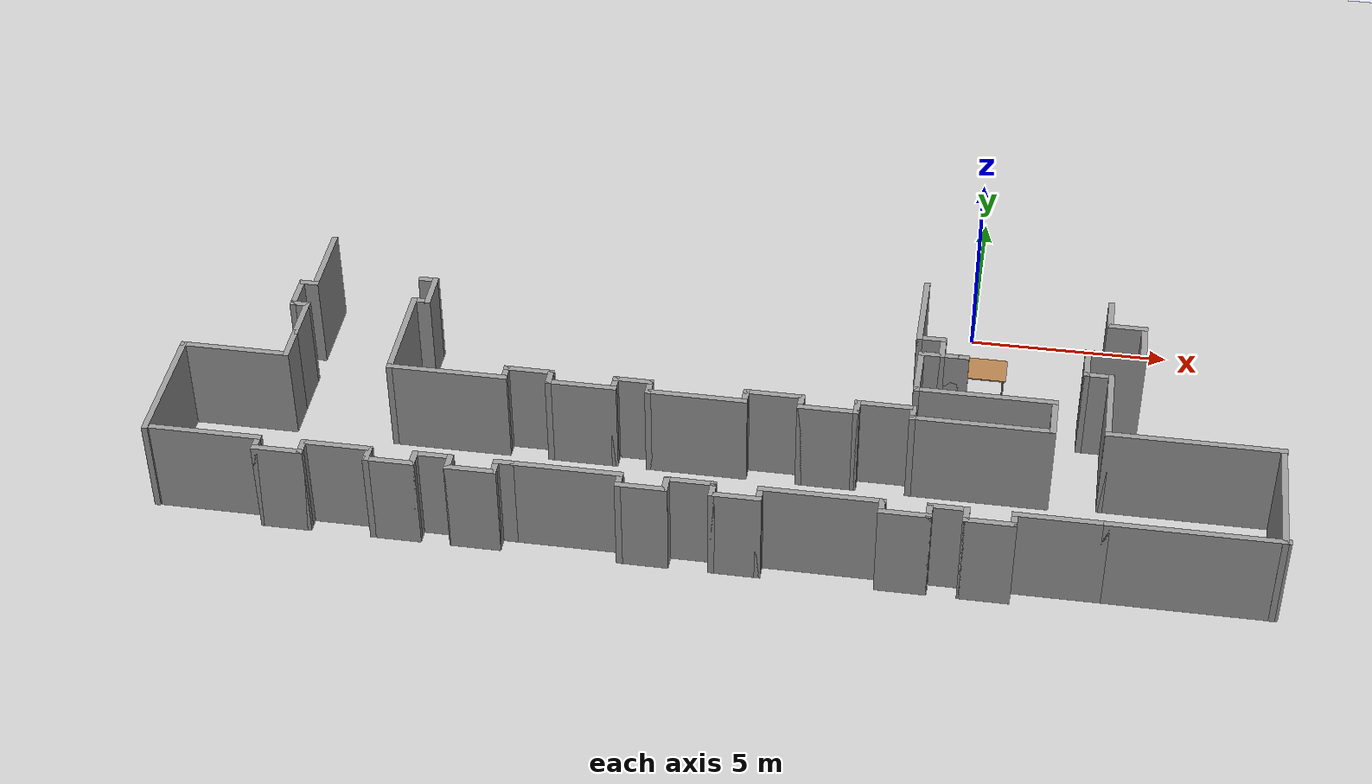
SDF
<sdf version="1.6">
 <world name="default">
  <model name="ground_plane">
   <static>1</static>
   <link name="link">
    <collision name="collision">
     <geometry><plane><normal>0 0 1</normal><size>1 1</size></plane></geometry>
     <surface><friction><ode><mu>100</mu><mu2>50</mu2></ode></friction></surface>
    </collision>
    <visual name="visual">
     <cast_shadows>0</cast_shadows>
     <geometry><plane><normal>0 0 1</normal><size>1 1</size></plane></geometry>
     <material>
      <script><uri>file://media/materials/scripts/gazebo.material</uri><name>Gazebo/Grey</name></script>
     </material>
    </visual>
   </link>
  </model>
  <model name="HRI_1">
   <pose>-5.72111 9.59502 0 0 -0 0</pose>
   <link name="Wall_10">
    <collision name="Wall_10_Collision">
     <geometry><box><size>1.5 0.15 2.5</size></box></geometry>
     <pose>0 0 1.25 0 -0 0</pose>
    </collision>
    <visual name="Wall_10_Visual">
     <pose>0 0 1.25 0 -0 0</pose>
     <geometry><box><size>1.5 0.15 2.5</size></box></geometry>
     <material>
      <script><uri>file://media/materials/scripts/gazebo.material</uri><name>Gazebo/Grey</name></script>
      <ambient>1 1 1 1</ambient>
     </material>
     <meta><layer>0</layer></meta>
    </visual>
    <pose>4.59204 -13.9049 0 0 -0 -1.5708</pose>
   </link>
   <link name="Wall_100">
    <collision name="Wall_100_Collision">
     <geometry><box><size>2 0.15 2.5</size></box></geometry>
     <pose>0 0 1.25 0 -0 0</pose>
    </collision>
    <visual name="Wall_100_Visual">
     <pose>0 0 1.25 0 -0 0</pose>
     <geometry><box><size>2 0.15 2.5</size></box></geometry>
     <material>
      <script><uri>file://media/materials/scripts/gazebo.material</uri><name>Gazebo/Grey</name></script>
      <ambient>1 1 1 1</ambient>
     </material>
     <meta><layer>0</layer></meta>
    </visual>
    <pose>-10.8271 -11.8378 0 0 -0 1.5708</pose>
   </link>
   <link name="Wall_11">
    <collision name="Wall_11_Collision">
     <geometry><box><size>3.5 0.15 2.5</size></box></geometry>
     <pose>0 0 1.25 0 -0 0</pose>
    </collision>
    <visual name="Wall_11_Visual">
     <pose>0 0 1.25 0 -0 0</pose>
     <geometry><box><size>3.5 0.15 2.5</size></box></geometry>
     <material>
      <script><uri>file://media/materials/scripts/gazebo.material</uri><name>Gazebo/Grey</name></script>
      <ambient>1 1 1 1</ambient>
     </material>
     <meta><layer>0</layer></meta>
    </visual>
    <pose>6.26704 -14.5799 0 0 -0 0</pose>
   </link>
   <link name="Wall_12">
    <collision name="Wall_12_Collision">
     <geometry><box><size>1.1925 0.15 2.5</size></box></geometry>
     <pose>0 0 1.25 0 -0 0</pose>
    </collision>
    <visual name="Wall_12_Visual">
     <pose>0 0 1.25 0 -0 0</pose>
     <geometry><box><size>1.1925 0.15 2.5</size></box></geometry>
     <material>
      <script><uri>file://media/materials/scripts/gazebo.material</uri><name>Gazebo/Grey</name></script>
      <ambient>1 1 1 1</ambient>
     </material>
     <meta><layer>0</layer></meta>
    </visual>
    <pose>7.94204 -15.1011 0 0 -0 -1.5708</pose>
   </link>
   <link name="Wall_133">
    <collision name="Wall_133_Collision">
     <geometry><box><size>2.75 0.15 2.5</size></box></geometry>
     <pose>0 0 1.25 0 -0 0</pose>
    </collision>
    <visual name="Wall_133_Visual">
     <pose>0 0 1.25 0 -0 0</pose>
     <geometry><box><size>2.75 0.15 2.5</size></box></geometry>
     <material>
      <script><uri>file://media/materials/scripts/gazebo.material</uri><name>Gazebo/Grey</name></script>
      <ambient>1 1 1 1</ambient>
     </material>
     <meta><layer>0</layer></meta>
    </visual>
    <pose>-8.20796 -14.3339 0 0 -0 1.5708</pose>
   </link>
   <link name="Wall_134">
    <collision name="Wall_134_Collision">
     <geometry><box><size>0.5 0.15 2.5</size></box></geometry>
     <pose>0 0 1.25 0 -0 0</pose>
    </collision>
    <visual name="Wall_134_Visual">
     <pose>0 0 1.25 0 -0 0</pose>
     <geometry><box><size>0.5 0.15 2.5</size></box></geometry>
     <material>
      <script><uri>file://media/materials/scripts/gazebo.material</uri><name>Gazebo/Grey</name></script>
      <ambient>1 1 1 1</ambient>
     </material>
     <meta><layer>0</layer></meta>
    </visual>
    <pose>-8.03296 -13.0339 0 0 -0 0</pose>
   </link>
   <link name="Wall_135">
    <collision name="Wall_135_Collision">
     <geometry><box><size>1 0.15 2.5</size></box></geometry>
     <pose>0 0 1.25 0 -0 0</pose>
    </collision>
    <visual name="Wall_135_Visual">
     <pose>0 0 1.25 0 -0 0</pose>
     <geometry><box><size>1 0.15 2.5</size></box></geometry>
     <material>
      <script><uri>file://media/materials/scripts/gazebo.material</uri><name>Gazebo/Grey</name></script>
      <ambient>1 1 1 1</ambient>
     </material>
     <meta><layer>0</layer></meta>
    </visual>
    <pose>-7.85796 -12.6089 0 0 -0 1.5708</pose>
   </link>
   <link name="Wall_136">
    <collision name="Wall_136_Collision">
     <geometry><box><size>0.5 0.15 2.5</size></box></geometry>
     <pose>0 0 1.25 0 -0 0</pose>
    </collision>
    <visual name="Wall_136_Visual">
     <pose>0 0 1.25 0 -0 0</pose>
     <geometry><box><size>0.5 0.15 2.5</size></box></geometry>
     <material>
      <script><uri>file://media/materials/scripts/gazebo.material</uri><name>Gazebo/Grey</name></script>
      <ambient>1 1 1 1</ambient>
     </material>
     <meta><layer>0</layer></meta>
    </visual>
    <pose>-8.03296 -12.1839 0 0 -0 3.14159</pose>
   </link>
   <link name="Wall_198">
    <collision name="Wall_198_Collision">
     <geometry><box><size>2.75 0.15 2.5</size></box></geometry>
     <pose>0 0 1.25 0 -0 0</pose>
    </collision>
    <visual name="Wall_198_Visual">
     <pose>0 0 1.25 0 -0 0</pose>
     <geometry><box><size>2.75 0.15 2.5</size></box></geometry>
     <material>
      <script><uri>file://media/materials/scripts/gazebo.material</uri><name>Gazebo/Grey</name></script>
      <ambient>1 1 1 1</ambient>
     </material>
     <meta><layer>0</layer></meta>
    </visual>
    <pose>-12.1271 -15.5628 0 0 -0 3.14159</pose>
   </link>
   <link name="Wall_199">
    <collision name="Wall_199_Collision">
     <geometry><box><size>3.25 0.15 2.5</size></box></geometry>
     <pose>0 0 1.25 0 -0 0</pose>
    </collision>
    <visual name="Wall_199_Visual">
     <pose>0 0 1.25 0 -0 0</pose>
     <geometry><box><size>3.25 0.15 2.5</size></box></geometry>
     <material>
      <script><uri>file://media/materials/scripts/gazebo.material</uri><name>Gazebo/Grey</name></script>
      <ambient>1 1 1 1</ambient>
     </material>
     <meta><layer>0</layer></meta>
    </visual>
    <pose>-13.4271 -17.1128 0 0 -0 -1.5708</pose>
   </link>
   <link name="Wall_231">
    <collision name="Wall_231_Collision">
     <geometry><box><size>3.25 0.15 2.5</size></box></geometry>
     <pose>0 0 1.25 0 -0 0</pose>
    </collision>
    <visual name="Wall_231_Visual">
     <pose>0 0 1.25 0 -0 0</pose>
     <geometry><box><size>3.25 0.15 2.5</size></box></geometry>
     <material>
      <script><uri>file://media/materials/scripts/gazebo.material</uri><name>Gazebo/Grey</name></script>
      <ambient>1 1 1 1</ambient>
     </material>
     <meta><layer>0</layer></meta>
    </visual>
    <pose>13.3595 -17.0799 0 0 -0 -1.5708</pose>
   </link>
   <link name="Wall_28">
    <collision name="Wall_28_Collision">
     <geometry><box><size>1 0.15 2.5</size></box></geometry>
     <pose>0 0 1.25 0 -0 0</pose>
    </collision>
    <visual name="Wall_28_Visual">
     <pose>0 0 1.25 0 -0 0</pose>
     <geometry><box><size>1 0.15 2.5</size></box></geometry>
     <material>
      <script><uri>file://media/materials/scripts/gazebo.material</uri><name>Gazebo/Grey</name></script>
      <ambient>1 1 1 1</ambient>
     </material>
     <meta><layer>0</layer></meta>
    </visual>
    <pose>9.14204 -11.0549 0 0 -0 -1.5708</pose>
   </link>
   <link name="Wall_29">
    <collision name="Wall_29_Collision">
     <geometry><box><size>1 0.15 2.5</size></box></geometry>
     <pose>0 0 1.25 0 -0 0</pose>
    </collision>
    <visual name="Wall_29_Visual">
     <pose>0 0 1.25 0 -0 0</pose>
     <geometry><box><size>1 0.15 2.5</size></box></geometry>
     <material>
      <script><uri>file://media/materials/scripts/gazebo.material</uri><name>Gazebo/Grey</name></script>
      <ambient>1 1 1 1</ambient>
     </material>
     <meta><layer>0</layer></meta>
    </visual>
    <pose>9.56704 -11.4799 0 0 -0 0</pose>
   </link>
   <link name="Wall_30">
    <collision name="Wall_30_Collision">
     <geometry><box><size>1.25 0.15 2.5</size></box></geometry>
     <pose>0 0 1.25 0 -0 0</pose>
    </collision>
    <visual name="Wall_30_Visual">
     <pose>0 0 1.25 0 -0 0</pose>
     <geometry><box><size>1.25 0.15 2.5</size></box></geometry>
     <material>
      <script><uri>file://media/materials/scripts/gazebo.material</uri><name>Gazebo/Grey</name></script>
      <ambient>1 1 1 1</ambient>
     </material>
     <meta><layer>0</layer></meta>
    </visual>
    <pose>9.99204 -12.0299 0 0 -0 -1.5708</pose>
   </link>
   <link name="Wall_31">
    <collision name="Wall_31_Collision">
     <geometry><box><size>1.5 0.15 2.5</size></box></geometry>
     <pose>0 0 1.25 0 -0 0</pose>
    </collision>
    <visual name="Wall_31_Visual">
     <pose>0 0 1.25 0 -0 0</pose>
     <geometry><box><size>1.5 0.15 2.5</size></box></geometry>
     <material>
      <script><uri>file://media/materials/scripts/gazebo.material</uri><name>Gazebo/Grey</name></script>
      <ambient>1 1 1 1</ambient>
     </material>
     <meta><layer>0</layer></meta>
    </visual>
    <pose>9.31704 -12.5799 0 0 -0 3.14159</pose>
   </link>
   <link name="Wall_32">
    <collision name="Wall_32_Collision">
     <geometry><box><size>1 0.15 2.5</size></box></geometry>
     <pose>0 0 1.25 0 -0 0</pose>
    </collision>
    <visual name="Wall_32_Visual">
     <pose>0 0 1.25 0 -0 0</pose>
     <geometry><box><size>1 0.15 2.5</size></box></geometry>
     <material>
      <script><uri>file://media/materials/scripts/gazebo.material</uri><name>Gazebo/Grey</name></script>
      <ambient>1 1 1 1</ambient>
     </material>
     <meta><layer>0</layer></meta>
    </visual>
    <pose>8.64204 -13.0049 0 0 -0 -1.5708</pose>
   </link>
   <link name="Wall_33">
    <collision name="Wall_33_Collision">
     <geometry><box><size>0.75 0.15 2.5</size></box></geometry>
     <pose>0 0 1.25 0 -0 0</pose>
    </collision>
    <visual name="Wall_33_Visual">
     <pose>0 0 1.25 0 -0 0</pose>
     <geometry><box><size>0.75 0.15 2.5</size></box></geometry>
     <material>
      <script><uri>file://media/materials/scripts/gazebo.material</uri><name>Gazebo/Grey</name></script>
      <ambient>1 1 1 1</ambient>
     </material>
     <meta><layer>0</layer></meta>
    </visual>
    <pose>8.94204 -13.4299 0 0 -0 0</pose>
   </link>
   <link name="Wall_34">
    <collision name="Wall_34_Collision">
     <geometry><box><size>2.25 0.15 2.5</size></box></geometry>
     <pose>0 0 1.25 0 -0 0</pose>
    </collision>
    <visual name="Wall_34_Visual">
     <pose>0 0 1.25 0 -0 0</pose>
     <geometry><box><size>2.25 0.15 2.5</size></box></geometry>
     <material>
      <script><uri>file://media/materials/scripts/gazebo.material</uri><name>Gazebo/Grey</name></script>
      <ambient>1 1 1 1</ambient>
     </material>
     <meta><layer>0</layer></meta>
    </visual>
    <pose>9.24204 -14.4799 0 0 -0 -1.5708</pose>
   </link>
   <link name="Wall_35">
    <collision name="Wall_35_Collision">
     <geometry><box><size>4.28498 0.15 2.5</size></box></geometry>
     <pose>0 0 1.25 0 -0 0</pose>
    </collision>
    <visual name="Wall_35_Visual">
     <pose>0 0 1.25 0 -0 0</pose>
     <geometry><box><size>4.28498 0.15 2.5</size></box></geometry>
     <material>
      <script><uri>file://media/materials/scripts/gazebo.material</uri><name>Gazebo/Grey</name></script>
      <ambient>1 1 1 1</ambient>
     </material>
     <meta><layer>0</layer></meta>
    </visual>
    <pose>11.3095 -15.5299 0 0 -0 0</pose>
   </link>
   <link name="Wall_37">
    <collision name="Wall_37_Collision">
     <geometry><box><size>4.25 0.15 2.5</size></box></geometry>
     <pose>0 0 1.25 0 -0 0</pose>
    </collision>
    <visual name="Wall_37_Visual">
     <pose>0 0 1.25 0 -0 0</pose>
     <geometry><box><size>4.25 0.15 2.5</size></box></geometry>
     <material>
      <script><uri>file://media/materials/scripts/gazebo.material</uri><name>Gazebo/Grey</name></script>
      <ambient>1 1 1 1</ambient>
     </material>
     <meta><layer>0</layer></meta>
    </visual>
    <pose>11.3771 -18.622 0 0 -0 0</pose>
   </link>
   <link name="Wall_39">
    <collision name="Wall_39_Collision">
     <geometry><box><size>3.5 0.15 2.5</size></box></geometry>
     <pose>0 0 1.25 0 -0 0</pose>
    </collision>
    <visual name="Wall_39_Visual">
     <pose>0 0 1.25 0 -0 0</pose>
     <geometry><box><size>3.5 0.15 2.5</size></box></geometry>
     <material>
      <script><uri>file://media/materials/scripts/gazebo.material</uri><name>Gazebo/Grey</name></script>
      <ambient>1 1 1 1</ambient>
     </material>
     <meta><layer>0</layer></meta>
    </visual>
    <pose>6.26704 -15.6339 0 0 -0 3.14159</pose>
   </link>
   <link name="Wall_41">
    <collision name="Wall_41_Collision">
     <geometry><box><size>0.5 0.15 2.5</size></box></geometry>
     <pose>0 0 1.25 0 -0 0</pose>
    </collision>
    <visual name="Wall_41_Visual">
     <pose>0 0 1.25 0 -0 0</pose>
     <geometry><box><size>0.5 0.15 2.5</size></box></geometry>
     <material>
      <script><uri>file://media/materials/scripts/gazebo.material</uri><name>Gazebo/Grey</name></script>
      <ambient>1 1 1 1</ambient>
     </material>
     <meta><layer>0</layer></meta>
    </visual>
    <pose>4.59204 -15.4589 0 0 -0 1.5708</pose>
   </link>
   <link name="Wall_42">
    <collision name="Wall_42_Collision">
     <geometry><box><size>1.5 0.15 2.5</size></box></geometry>
     <pose>0 0 1.25 0 -0 0</pose>
    </collision>
    <visual name="Wall_42_Visual">
     <pose>0 0 1.25 0 -0 0</pose>
     <geometry><box><size>1.5 0.15 2.5</size></box></geometry>
     <material>
      <script><uri>file://media/materials/scripts/gazebo.material</uri><name>Gazebo/Grey</name></script>
      <ambient>1 1 1 1</ambient>
     </material>
     <meta><layer>0</layer></meta>
    </visual>
    <pose>3.91704 -15.2839 0 0 -0 3.14159</pose>
   </link>
   <link name="Wall_43">
    <collision name="Wall_43_Collision">
     <geometry><box><size>0.5 0.15 2.5</size></box></geometry>
     <pose>0 0 1.25 0 -0 0</pose>
    </collision>
    <visual name="Wall_43_Visual">
     <pose>0 0 1.25 0 -0 0</pose>
     <geometry><box><size>0.5 0.15 2.5</size></box></geometry>
     <material>
      <script><uri>file://media/materials/scripts/gazebo.material</uri><name>Gazebo/Grey</name></script>
      <ambient>1 1 1 1</ambient>
     </material>
     <meta><layer>0</layer></meta>
    </visual>
    <pose>3.24204 -15.4589 0 0 -0 -1.5708</pose>
   </link>
   <link name="Wall_44">
    <collision name="Wall_44_Collision">
     <geometry><box><size>1.5 0.15 2.5</size></box></geometry>
     <pose>0 0 1.25 0 -0 0</pose>
    </collision>
    <visual name="Wall_44_Visual">
     <pose>0 0 1.25 0 -0 0</pose>
     <geometry><box><size>1.5 0.15 2.5</size></box></geometry>
     <material>
      <script><uri>file://media/materials/scripts/gazebo.material</uri><name>Gazebo/Grey</name></script>
      <ambient>1 1 1 1</ambient>
     </material>
     <meta><layer>0</layer></meta>
    </visual>
    <pose>2.56704 -15.6339 0 0 -0 3.14159</pose>
   </link>
   <link name="Wall_45">
    <collision name="Wall_45_Collision">
     <geometry><box><size>0.5 0.15 2.5</size></box></geometry>
     <pose>0 0 1.25 0 -0 0</pose>
    </collision>
    <visual name="Wall_45_Visual">
     <pose>0 0 1.25 0 -0 0</pose>
     <geometry><box><size>0.5 0.15 2.5</size></box></geometry>
     <material>
      <script><uri>file://media/materials/scripts/gazebo.material</uri><name>Gazebo/Grey</name></script>
      <ambient>1 1 1 1</ambient>
     </material>
     <meta><layer>0</layer></meta>
    </visual>
    <pose>1.89204 -15.4589 0 0 -0 1.5708</pose>
   </link>
   <link name="Wall_46">
    <collision name="Wall_46_Collision">
     <geometry><box><size>1.5 0.15 2.5</size></box></geometry>
     <pose>0 0 1.25 0 -0 0</pose>
    </collision>
    <visual name="Wall_46_Visual">
     <pose>0 0 1.25 0 -0 0</pose>
     <geometry><box><size>1.5 0.15 2.5</size></box></geometry>
     <material>
      <script><uri>file://media/materials/scripts/gazebo.material</uri><name>Gazebo/Grey</name></script>
      <ambient>1 1 1 1</ambient>
     </material>
     <meta><layer>0</layer></meta>
    </visual>
    <pose>1.21704 -15.2839 0 0 -0 3.14159</pose>
   </link>
   <link name="Wall_47">
    <collision name="Wall_47_Collision">
     <geometry><box><size>0.5 0.15 2.5</size></box></geometry>
     <pose>0 0 1.25 0 -0 0</pose>
    </collision>
    <visual name="Wall_47_Visual">
     <pose>0 0 1.25 0 -0 0</pose>
     <geometry><box><size>0.5 0.15 2.5</size></box></geometry>
     <material>
      <script><uri>file://media/materials/scripts/gazebo.material</uri><name>Gazebo/Grey</name></script>
      <ambient>1 1 1 1</ambient>
     </material>
     <meta><layer>0</layer></meta>
    </visual>
    <pose>0.542038 -15.4589 0 0 -0 -1.5708</pose>
   </link>
   <link name="Wall_48">
    <collision name="Wall_48_Collision">
     <geometry><box><size>2.5 0.15 2.5</size></box></geometry>
     <pose>0 0 1.25 0 -0 0</pose>
    </collision>
    <visual name="Wall_48_Visual">
     <pose>0 0 1.25 0 -0 0</pose>
     <geometry><box><size>2.5 0.15 2.5</size></box></geometry>
     <material>
      <script><uri>file://media/materials/scripts/gazebo.material</uri><name>Gazebo/Grey</name></script>
      <ambient>1 1 1 1</ambient>
     </material>
     <meta><layer>0</layer></meta>
    </visual>
    <pose>-0.632962 -15.6339 0 0 -0 3.14159</pose>
   </link>
   <link name="Wall_49">
    <collision name="Wall_49_Collision">
     <geometry><box><size>0.5 0.15 2.5</size></box></geometry>
     <pose>0 0 1.25 0 -0 0</pose>
    </collision>
    <visual name="Wall_49_Visual">
     <pose>0 0 1.25 0 -0 0</pose>
     <geometry><box><size>0.5 0.15 2.5</size></box></geometry>
     <material>
      <script><uri>file://media/materials/scripts/gazebo.material</uri><name>Gazebo/Grey</name></script>
      <ambient>1 1 1 1</ambient>
     </material>
     <meta><layer>0</layer></meta>
    </visual>
    <pose>-1.80796 -15.4589 0 0 -0 1.5708</pose>
   </link>
   <link name="Wall_5">
    <collision name="Wall_5_Collision">
     <geometry><box><size>2.25 0.15 2.5</size></box></geometry>
     <pose>0 0 1.25 0 -0 0</pose>
    </collision>
    <visual name="Wall_5_Visual">
     <pose>0 0 1.25 0 -0 0</pose>
     <geometry><box><size>2.25 0.15 2.5</size></box></geometry>
     <material>
      <script><uri>file://media/materials/scripts/gazebo.material</uri><name>Gazebo/Grey</name></script>
      <ambient>1 1 1 1</ambient>
     </material>
     <meta><layer>0</layer></meta>
    </visual>
    <pose>4.49204 -11.5799 0 0 -0 -1.5708</pose>
   </link>
   <link name="Wall_50">
    <collision name="Wall_50_Collision">
     <geometry><box><size>1 0.15 2.5</size></box></geometry>
     <pose>0 0 1.25 0 -0 0</pose>
    </collision>
    <visual name="Wall_50_Visual">
     <pose>0 0 1.25 0 -0 0</pose>
     <geometry><box><size>1 0.15 2.5</size></box></geometry>
     <material>
      <script><uri>file://media/materials/scripts/gazebo.material</uri><name>Gazebo/Grey</name></script>
      <ambient>1 1 1 1</ambient>
     </material>
     <meta><layer>0</layer></meta>
    </visual>
    <pose>-2.23296 -15.2839 0 0 -0 3.14159</pose>
   </link>
   <link name="Wall_51">
    <collision name="Wall_51_Collision">
     <geometry><box><size>0.5 0.15 2.5</size></box></geometry>
     <pose>0 0 1.25 0 -0 0</pose>
    </collision>
    <visual name="Wall_51_Visual">
     <pose>0 0 1.25 0 -0 0</pose>
     <geometry><box><size>0.5 0.15 2.5</size></box></geometry>
     <material>
      <script><uri>file://media/materials/scripts/gazebo.material</uri><name>Gazebo/Grey</name></script>
      <ambient>1 1 1 1</ambient>
     </material>
     <meta><layer>0</layer></meta>
    </visual>
    <pose>-2.65796 -15.4589 0 0 -0 -1.5708</pose>
   </link>
   <link name="Wall_53">
    <collision name="Wall_53_Collision">
     <geometry><box><size>1.75 0.15 2.5</size></box></geometry>
     <pose>0 0 1.25 0 -0 0</pose>
    </collision>
    <visual name="Wall_53_Visual">
     <pose>0 0 1.25 0 -0 0</pose>
     <geometry><box><size>1.75 0.15 2.5</size></box></geometry>
     <material>
      <script><uri>file://media/materials/scripts/gazebo.material</uri><name>Gazebo/Grey</name></script>
      <ambient>1 1 1 1</ambient>
     </material>
     <meta><layer>0</layer></meta>
    </visual>
    <pose>-3.45796 -15.6339 0 0 -0 3.14159</pose>
   </link>
   <link name="Wall_54">
    <collision name="Wall_54_Collision">
     <geometry><box><size>0.5 0.15 2.5</size></box></geometry>
     <pose>0 0 1.25 0 -0 0</pose>
    </collision>
    <visual name="Wall_54_Visual">
     <pose>0 0 1.25 0 -0 0</pose>
     <geometry><box><size>0.5 0.15 2.5</size></box></geometry>
     <material>
      <script><uri>file://media/materials/scripts/gazebo.material</uri><name>Gazebo/Grey</name></script>
      <ambient>1 1 1 1</ambient>
     </material>
     <meta><layer>0</layer></meta>
    </visual>
    <pose>-4.25796 -15.4589 0 0 -0 1.5708</pose>
   </link>
   <link name="Wall_55">
    <collision name="Wall_55_Collision">
     <geometry><box><size>1.25 0.15 2.5</size></box></geometry>
     <pose>0 0 1.25 0 -0 0</pose>
    </collision>
    <visual name="Wall_55_Visual">
     <pose>0 0 1.25 0 -0 0</pose>
     <geometry><box><size>1.25 0.15 2.5</size></box></geometry>
     <material>
      <script><uri>file://media/materials/scripts/gazebo.material</uri><name>Gazebo/Grey</name></script>
      <ambient>1 1 1 1</ambient>
     </material>
     <meta><layer>0</layer></meta>
    </visual>
    <pose>-4.80796 -15.2839 0 0 -0 3.14159</pose>
   </link>
   <link name="Wall_56">
    <collision name="Wall_56_Collision">
     <geometry><box><size>0.5 0.15 2.5</size></box></geometry>
     <pose>0 0 1.25 0 -0 0</pose>
    </collision>
    <visual name="Wall_56_Visual">
     <pose>0 0 1.25 0 -0 0</pose>
     <geometry><box><size>0.5 0.15 2.5</size></box></geometry>
     <material>
      <script><uri>file://media/materials/scripts/gazebo.material</uri><name>Gazebo/Grey</name></script>
      <ambient>1 1 1 1</ambient>
     </material>
     <meta><layer>0</layer></meta>
    </visual>
    <pose>-5.35796 -15.4589 0 0 -0 -1.5708</pose>
   </link>
   <link name="Wall_57">
    <collision name="Wall_57_Collision">
     <geometry><box><size>3 0.15 2.5</size></box></geometry>
     <pose>0 0 1.25 0 -0 0</pose>
    </collision>
    <visual name="Wall_57_Visual">
     <pose>0 0 1.25 0 -0 0</pose>
     <geometry><box><size>3 0.15 2.5</size></box></geometry>
     <material>
      <script><uri>file://media/materials/scripts/gazebo.material</uri><name>Gazebo/Grey</name></script>
      <ambient>1 1 1 1</ambient>
     </material>
     <meta><layer>0</layer></meta>
    </visual>
    <pose>-6.78296 -15.6339 0 0 -0 3.14159</pose>
   </link>
   <link name="Wall_59">
    <collision name="Wall_59_Collision">
     <geometry><box><size>2.25 0.15 2.5</size></box></geometry>
     <pose>0 0 1.25 0 -0 0</pose>
    </collision>
    <visual name="Wall_59_Visual">
     <pose>0 0 1.25 0 -0 0</pose>
     <geometry><box><size>2.25 0.15 2.5</size></box></geometry>
     <material>
      <script><uri>file://media/materials/scripts/gazebo.material</uri><name>Gazebo/Grey</name></script>
      <ambient>1 1 1 1</ambient>
     </material>
     <meta><layer>0</layer></meta>
    </visual>
    <pose>8.27714 -18.622 0 0 -0 3.14159</pose>
   </link>
   <link name="Wall_6">
    <collision name="Wall_6_Collision">
     <geometry><box><size>0.75 0.15 2.5</size></box></geometry>
     <pose>0 0 1.25 0 -0 0</pose>
    </collision>
    <visual name="Wall_6_Visual">
     <pose>0 0 1.25 0 -0 0</pose>
     <geometry><box><size>0.75 0.15 2.5</size></box></geometry>
     <material>
      <script><uri>file://media/materials/scripts/gazebo.material</uri><name>Gazebo/Grey</name></script>
      <ambient>1 1 1 1</ambient>
     </material>
     <meta><layer>0</layer></meta>
    </visual>
    <pose>4.79204 -12.6299 0 0 -0 0</pose>
   </link>
   <link name="Wall_60">
    <collision name="Wall_60_Collision">
     <geometry><box><size>0.5 0.15 2.5</size></box></geometry>
     <pose>0 0 1.25 0 -0 0</pose>
    </collision>
    <visual name="Wall_60_Visual">
     <pose>0 0 1.25 0 -0 0</pose>
     <geometry><box><size>0.5 0.15 2.5</size></box></geometry>
     <material>
      <script><uri>file://media/materials/scripts/gazebo.material</uri><name>Gazebo/Grey</name></script>
      <ambient>1 1 1 1</ambient>
     </material>
     <meta><layer>0</layer></meta>
    </visual>
    <pose>7.22714 -18.797 0 0 -0 -1.5708</pose>
   </link>
   <link name="Wall_61">
    <collision name="Wall_61_Collision">
     <geometry><box><size>1.25 0.15 2.5</size></box></geometry>
     <pose>0 0 1.25 0 -0 0</pose>
    </collision>
    <visual name="Wall_61_Visual">
     <pose>0 0 1.25 0 -0 0</pose>
     <geometry><box><size>1.25 0.15 2.5</size></box></geometry>
     <material>
      <script><uri>file://media/materials/scripts/gazebo.material</uri><name>Gazebo/Grey</name></script>
      <ambient>1 1 1 1</ambient>
     </material>
     <meta><layer>0</layer></meta>
    </visual>
    <pose>6.67714 -18.972 0 0 -0 3.14159</pose>
   </link>
   <link name="Wall_62">
    <collision name="Wall_62_Collision">
     <geometry><box><size>0.5 0.15 2.5</size></box></geometry>
     <pose>0 0 1.25 0 -0 0</pose>
    </collision>
    <visual name="Wall_62_Visual">
     <pose>0 0 1.25 0 -0 0</pose>
     <geometry><box><size>0.5 0.15 2.5</size></box></geometry>
     <material>
      <script><uri>file://media/materials/scripts/gazebo.material</uri><name>Gazebo/Grey</name></script>
      <ambient>1 1 1 1</ambient>
     </material>
     <meta><layer>0</layer></meta>
    </visual>
    <pose>6.12714 -18.797 0 0 -0 1.5708</pose>
   </link>
   <link name="Wall_63">
    <collision name="Wall_63_Collision">
     <geometry><box><size>1 0.15 2.5</size></box></geometry>
     <pose>0 0 1.25 0 -0 0</pose>
    </collision>
    <visual name="Wall_63_Visual">
     <pose>0 0 1.25 0 -0 0</pose>
     <geometry><box><size>1 0.15 2.5</size></box></geometry>
     <material>
      <script><uri>file://media/materials/scripts/gazebo.material</uri><name>Gazebo/Grey</name></script>
      <ambient>1 1 1 1</ambient>
     </material>
     <meta><layer>0</layer></meta>
    </visual>
    <pose>5.70214 -18.622 0 0 -0 3.14159</pose>
   </link>
   <link name="Wall_64">
    <collision name="Wall_64_Collision">
     <geometry><box><size>0.5 0.15 2.5</size></box></geometry>
     <pose>0 0 1.25 0 -0 0</pose>
    </collision>
    <visual name="Wall_64_Visual">
     <pose>0 0 1.25 0 -0 0</pose>
     <geometry><box><size>0.5 0.15 2.5</size></box></geometry>
     <material>
      <script><uri>file://media/materials/scripts/gazebo.material</uri><name>Gazebo/Grey</name></script>
      <ambient>1 1 1 1</ambient>
     </material>
     <meta><layer>0</layer></meta>
    </visual>
    <pose>5.27714 -18.797 0 0 -0 -1.5708</pose>
   </link>
   <link name="Wall_65">
    <collision name="Wall_65_Collision">
     <geometry><box><size>1.25 0.15 2.5</size></box></geometry>
     <pose>0 0 1.25 0 -0 0</pose>
    </collision>
    <visual name="Wall_65_Visual">
     <pose>0 0 1.25 0 -0 0</pose>
     <geometry><box><size>1.25 0.15 2.5</size></box></geometry>
     <material>
      <script><uri>file://media/materials/scripts/gazebo.material</uri><name>Gazebo/Grey</name></script>
      <ambient>1 1 1 1</ambient>
     </material>
     <meta><layer>0</layer></meta>
    </visual>
    <pose>4.72714 -18.972 0 0 -0 3.14159</pose>
   </link>
   <link name="Wall_66">
    <collision name="Wall_66_Collision">
     <geometry><box><size>0.484791 0.15 2.5</size></box></geometry>
     <pose>0 0 1.25 0 -0 0</pose>
    </collision>
    <visual name="Wall_66_Visual">
     <pose>0 0 1.25 0 -0 0</pose>
     <geometry><box><size>0.484791 0.15 2.5</size></box></geometry>
     <material>
      <script><uri>file://media/materials/scripts/gazebo.material</uri><name>Gazebo/Grey</name></script>
      <ambient>1 1 1 1</ambient>
     </material>
     <meta><layer>0</layer></meta>
    </visual>
    <pose>4.17714 -18.8046 0 0 -0 1.5708</pose>
   </link>
   <link name="Wall_67">
    <collision name="Wall_67_Collision">
     <geometry><box><size>3 0.15 2.5</size></box></geometry>
     <pose>0 0 1.25 0 -0 0</pose>
    </collision>
    <visual name="Wall_67_Visual">
     <pose>0 0 1.25 0 -0 0</pose>
     <geometry><box><size>3 0.15 2.5</size></box></geometry>
     <material>
      <script><uri>file://media/materials/scripts/gazebo.material</uri><name>Gazebo/Grey</name></script>
      <ambient>1 1 1 1</ambient>
     </material>
     <meta><layer>0</layer></meta>
    </visual>
    <pose>2.76735 -18.6372 0 0 -0 3.14159</pose>
   </link>
   <link name="Wall_7">
    <collision name="Wall_7_Collision">
     <geometry><box><size>0.75 0.15 2.5</size></box></geometry>
     <pose>0 0 1.25 0 -0 0</pose>
    </collision>
    <visual name="Wall_7_Visual">
     <pose>0 0 1.25 0 -0 0</pose>
     <geometry><box><size>0.75 0.15 2.5</size></box></geometry>
     <material>
      <script><uri>file://media/materials/scripts/gazebo.material</uri><name>Gazebo/Grey</name></script>
      <ambient>1 1 1 1</ambient>
     </material>
     <meta><layer>0</layer></meta>
    </visual>
    <pose>5.09204 -12.9299 0 0 -0 -1.5708</pose>
   </link>
   <link name="Wall_71">
    <collision name="Wall_71_Collision">
     <geometry><box><size>0.5 0.15 2.5</size></box></geometry>
     <pose>0 0 1.25 0 -0 0</pose>
    </collision>
    <visual name="Wall_71_Visual">
     <pose>0 0 1.25 0 -0 0</pose>
     <geometry><box><size>0.5 0.15 2.5</size></box></geometry>
     <material>
      <script><uri>file://media/materials/scripts/gazebo.material</uri><name>Gazebo/Grey</name></script>
      <ambient>1 1 1 1</ambient>
     </material>
     <meta><layer>0</layer></meta>
    </visual>
    <pose>1.34235 -18.8122 0 0 -0 -1.5708</pose>
   </link>
   <link name="Wall_72">
    <collision name="Wall_72_Collision">
     <geometry><box><size>1.25 0.15 2.5</size></box></geometry>
     <pose>0 0 1.25 0 -0 0</pose>
    </collision>
    <visual name="Wall_72_Visual">
     <pose>0 0 1.25 0 -0 0</pose>
     <geometry><box><size>1.25 0.15 2.5</size></box></geometry>
     <material>
      <script><uri>file://media/materials/scripts/gazebo.material</uri><name>Gazebo/Grey</name></script>
      <ambient>1 1 1 1</ambient>
     </material>
     <meta><layer>0</layer></meta>
    </visual>
    <pose>0.792351 -18.9872 0 0 -0 3.14159</pose>
   </link>
   <link name="Wall_73">
    <collision name="Wall_73_Collision">
     <geometry><box><size>0.5 0.15 2.5</size></box></geometry>
     <pose>0 0 1.25 0 -0 0</pose>
    </collision>
    <visual name="Wall_73_Visual">
     <pose>0 0 1.25 0 -0 0</pose>
     <geometry><box><size>0.5 0.15 2.5</size></box></geometry>
     <material>
      <script><uri>file://media/materials/scripts/gazebo.material</uri><name>Gazebo/Grey</name></script>
      <ambient>1 1 1 1</ambient>
     </material>
     <meta><layer>0</layer></meta>
    </visual>
    <pose>0.242351 -18.8122 0 0 -0 1.5708</pose>
   </link>
   <link name="Wall_74">
    <collision name="Wall_74_Collision">
     <geometry><box><size>1.25 0.15 2.5</size></box></geometry>
     <pose>0 0 1.25 0 -0 0</pose>
    </collision>
    <visual name="Wall_74_Visual">
     <pose>0 0 1.25 0 -0 0</pose>
     <geometry><box><size>1.25 0.15 2.5</size></box></geometry>
     <material>
      <script><uri>file://media/materials/scripts/gazebo.material</uri><name>Gazebo/Grey</name></script>
      <ambient>1 1 1 1</ambient>
     </material>
     <meta><layer>0</layer></meta>
    </visual>
    <pose>-0.307649 -18.6372 0 0 -0 3.14159</pose>
   </link>
   <link name="Wall_75">
    <collision name="Wall_75_Collision">
     <geometry><box><size>0.5 0.15 2.5</size></box></geometry>
     <pose>0 0 1.25 0 -0 0</pose>
    </collision>
    <visual name="Wall_75_Visual">
     <pose>0 0 1.25 0 -0 0</pose>
     <geometry><box><size>0.5 0.15 2.5</size></box></geometry>
     <material>
      <script><uri>file://media/materials/scripts/gazebo.material</uri><name>Gazebo/Grey</name></script>
      <ambient>1 1 1 1</ambient>
     </material>
     <meta><layer>0</layer></meta>
    </visual>
    <pose>-0.857649 -18.8122 0 0 -0 -1.5708</pose>
   </link>
   <link name="Wall_76">
    <collision name="Wall_76_Collision">
     <geometry><box><size>1.25 0.15 2.5</size></box></geometry>
     <pose>0 0 1.25 0 -0 0</pose>
    </collision>
    <visual name="Wall_76_Visual">
     <pose>0 0 1.25 0 -0 0</pose>
     <geometry><box><size>1.25 0.15 2.5</size></box></geometry>
     <material>
      <script><uri>file://media/materials/scripts/gazebo.material</uri><name>Gazebo/Grey</name></script>
      <ambient>1 1 1 1</ambient>
     </material>
     <meta><layer>0</layer></meta>
    </visual>
    <pose>-1.40765 -18.9872 0 0 -0 3.14159</pose>
   </link>
   <link name="Wall_77">
    <collision name="Wall_77_Collision">
     <geometry><box><size>0.5 0.15 2.5</size></box></geometry>
     <pose>0 0 1.25 0 -0 0</pose>
    </collision>
    <visual name="Wall_77_Visual">
     <pose>0 0 1.25 0 -0 0</pose>
     <geometry><box><size>0.5 0.15 2.5</size></box></geometry>
     <material>
      <script><uri>file://media/materials/scripts/gazebo.material</uri><name>Gazebo/Grey</name></script>
      <ambient>1 1 1 1</ambient>
     </material>
     <meta><layer>0</layer></meta>
    </visual>
    <pose>-1.95765 -18.8122 0 0 -0 1.5708</pose>
   </link>
   <link name="Wall_78">
    <collision name="Wall_78_Collision">
     <geometry><box><size>2.75 0.15 2.5</size></box></geometry>
     <pose>0 0 1.25 0 -0 0</pose>
    </collision>
    <visual name="Wall_78_Visual">
     <pose>0 0 1.25 0 -0 0</pose>
     <geometry><box><size>2.75 0.15 2.5</size></box></geometry>
     <material>
      <script><uri>file://media/materials/scripts/gazebo.material</uri><name>Gazebo/Grey</name></script>
      <ambient>1 1 1 1</ambient>
     </material>
     <meta><layer>0</layer></meta>
    </visual>
    <pose>-3.25765 -18.6372 0 0 -0 3.14159</pose>
   </link>
   <link name="Wall_8">
    <collision name="Wall_8_Collision">
     <geometry><box><size>0.75 0.15 2.5</size></box></geometry>
     <pose>0 0 1.25 0 -0 0</pose>
    </collision>
    <visual name="Wall_8_Visual">
     <pose>0 0 1.25 0 -0 0</pose>
     <geometry><box><size>0.75 0.15 2.5</size></box></geometry>
     <material>
      <script><uri>file://media/materials/scripts/gazebo.material</uri><name>Gazebo/Grey</name></script>
      <ambient>1 1 1 1</ambient>
     </material>
     <meta><layer>0</layer></meta>
    </visual>
    <pose>5.39204 -13.2299 0 0 -0 0</pose>
   </link>
   <link name="Wall_80">
    <collision name="Wall_80_Collision">
     <geometry><box><size>0.5 0.15 2.5</size></box></geometry>
     <pose>0 0 1.25 0 -0 0</pose>
    </collision>
    <visual name="Wall_80_Visual">
     <pose>0 0 1.25 0 -0 0</pose>
     <geometry><box><size>0.5 0.15 2.5</size></box></geometry>
     <material>
      <script><uri>file://media/materials/scripts/gazebo.material</uri><name>Gazebo/Grey</name></script>
      <ambient>1 1 1 1</ambient>
     </material>
     <meta><layer>0</layer></meta>
    </visual>
    <pose>-4.73265 -18.6372 0 0 -0 3.14159</pose>
   </link>
   <link name="Wall_81">
    <collision name="Wall_81_Collision">
     <geometry><box><size>0.5 0.15 2.5</size></box></geometry>
     <pose>0 0 1.25 0 -0 0</pose>
    </collision>
    <visual name="Wall_81_Visual">
     <pose>0 0 1.25 0 -0 0</pose>
     <geometry><box><size>0.5 0.15 2.5</size></box></geometry>
     <material>
      <script><uri>file://media/materials/scripts/gazebo.material</uri><name>Gazebo/Grey</name></script>
      <ambient>1 1 1 1</ambient>
     </material>
     <meta><layer>0</layer></meta>
    </visual>
    <pose>-4.90765 -18.8122 0 0 -0 -1.5708</pose>
   </link>
   <link name="Wall_82">
    <collision name="Wall_82_Collision">
     <geometry><box><size>1.25 0.15 2.5</size></box></geometry>
     <pose>0 0 1.25 0 -0 0</pose>
    </collision>
    <visual name="Wall_82_Visual">
     <pose>0 0 1.25 0 -0 0</pose>
     <geometry><box><size>1.25 0.15 2.5</size></box></geometry>
     <material>
      <script><uri>file://media/materials/scripts/gazebo.material</uri><name>Gazebo/Grey</name></script>
      <ambient>1 1 1 1</ambient>
     </material>
     <meta><layer>0</layer></meta>
    </visual>
    <pose>-5.45765 -18.9872 0 0 -0 3.14159</pose>
   </link>
   <link name="Wall_83">
    <collision name="Wall_83_Collision">
     <geometry><box><size>0.5 0.15 2.5</size></box></geometry>
     <pose>0 0 1.25 0 -0 0</pose>
    </collision>
    <visual name="Wall_83_Visual">
     <pose>0 0 1.25 0 -0 0</pose>
     <geometry><box><size>0.5 0.15 2.5</size></box></geometry>
     <material>
      <script><uri>file://media/materials/scripts/gazebo.material</uri><name>Gazebo/Grey</name></script>
      <ambient>1 1 1 1</ambient>
     </material>
     <meta><layer>0</layer></meta>
    </visual>
    <pose>-6.00765 -18.8122 0 0 -0 1.5708</pose>
   </link>
   <link name="Wall_84">
    <collision name="Wall_84_Collision">
     <geometry><box><size>1 0.15 2.5</size></box></geometry>
     <pose>0 0 1.25 0 -0 0</pose>
    </collision>
    <visual name="Wall_84_Visual">
     <pose>0 0 1.25 0 -0 0</pose>
     <geometry><box><size>1 0.15 2.5</size></box></geometry>
     <material>
      <script><uri>file://media/materials/scripts/gazebo.material</uri><name>Gazebo/Grey</name></script>
      <ambient>1 1 1 1</ambient>
     </material>
     <meta><layer>0</layer></meta>
    </visual>
    <pose>-6.43265 -18.6372 0 0 -0 3.14159</pose>
   </link>
   <link name="Wall_85">
    <collision name="Wall_85_Collision">
     <geometry><box><size>0.5 0.15 2.5</size></box></geometry>
     <pose>0 0 1.25 0 -0 0</pose>
    </collision>
    <visual name="Wall_85_Visual">
     <pose>0 0 1.25 0 -0 0</pose>
     <geometry><box><size>0.5 0.15 2.5</size></box></geometry>
     <material>
      <script><uri>file://media/materials/scripts/gazebo.material</uri><name>Gazebo/Grey</name></script>
      <ambient>1 1 1 1</ambient>
     </material>
     <meta><layer>0</layer></meta>
    </visual>
    <pose>-6.85765 -18.8122 0 0 -0 -1.5708</pose>
   </link>
   <link name="Wall_86">
    <collision name="Wall_86_Collision">
     <geometry><box><size>1.25 0.15 2.5</size></box></geometry>
     <pose>0 0 1.25 0 -0 0</pose>
    </collision>
    <visual name="Wall_86_Visual">
     <pose>0 0 1.25 0 -0 0</pose>
     <geometry><box><size>1.25 0.15 2.5</size></box></geometry>
     <material>
      <script><uri>file://media/materials/scripts/gazebo.material</uri><name>Gazebo/Grey</name></script>
      <ambient>1 1 1 1</ambient>
     </material>
     <meta><layer>0</layer></meta>
    </visual>
    <pose>-7.40765 -18.9872 0 0 -0 3.14159</pose>
   </link>
   <link name="Wall_87">
    <collision name="Wall_87_Collision">
     <geometry><box><size>0.5 0.15 2.5</size></box></geometry>
     <pose>0 0 1.25 0 -0 0</pose>
    </collision>
    <visual name="Wall_87_Visual">
     <pose>0 0 1.25 0 -0 0</pose>
     <geometry><box><size>0.5 0.15 2.5</size></box></geometry>
     <material>
      <script><uri>file://media/materials/scripts/gazebo.material</uri><name>Gazebo/Grey</name></script>
      <ambient>1 1 1 1</ambient>
     </material>
     <meta><layer>0</layer></meta>
    </visual>
    <pose>-7.95765 -18.8122 0 0 -0 1.5708</pose>
   </link>
   <link name="Wall_88">
    <collision name="Wall_88_Collision">
     <geometry><box><size>1.75 0.15 2.5</size></box></geometry>
     <pose>0 0 1.25 0 -0 0</pose>
    </collision>
    <visual name="Wall_88_Visual">
     <pose>0 0 1.25 0 -0 0</pose>
     <geometry><box><size>1.75 0.15 2.5</size></box></geometry>
     <material>
      <script><uri>file://media/materials/scripts/gazebo.material</uri><name>Gazebo/Grey</name></script>
      <ambient>1 1 1 1</ambient>
     </material>
     <meta><layer>0</layer></meta>
    </visual>
    <pose>-8.75765 -18.6372 0 0 -0 3.14159</pose>
   </link>
   <link name="Wall_89">
    <collision name="Wall_89_Collision">
     <geometry><box><size>0.5 0.15 2.5</size></box></geometry>
     <pose>0 0 1.25 0 -0 0</pose>
    </collision>
    <visual name="Wall_89_Visual">
     <pose>0 0 1.25 0 -0 0</pose>
     <geometry><box><size>0.5 0.15 2.5</size></box></geometry>
     <material>
      <script><uri>file://media/materials/scripts/gazebo.material</uri><name>Gazebo/Grey</name></script>
      <ambient>1 1 1 1</ambient>
     </material>
     <meta><layer>0</layer></meta>
    </visual>
    <pose>-9.55765 -18.8122 0 0 -0 -1.5708</pose>
   </link>
   <link name="Wall_9">
    <collision name="Wall_9_Collision">
     <geometry><box><size>1.25 0.15 2.5</size></box></geometry>
     <pose>0 0 1.25 0 -0 0</pose>
    </collision>
    <visual name="Wall_9_Visual">
     <pose>0 0 1.25 0 -0 0</pose>
     <geometry><box><size>1.25 0.15 2.5</size></box></geometry>
     <material>
      <script><uri>file://media/materials/scripts/gazebo.material</uri><name>Gazebo/Grey</name></script>
      <ambient>1 1 1 1</ambient>
     </material>
     <meta><layer>0</layer></meta>
    </visual>
    <pose>5.14204 -13.2299 0 0 -0 3.14159</pose>
   </link>
   <link name="Wall_90">
    <collision name="Wall_90_Collision">
     <geometry><box><size>1.25 0.15 2.5</size></box></geometry>
     <pose>0 0 1.25 0 -0 0</pose>
    </collision>
    <visual name="Wall_90_Visual">
     <pose>0 0 1.25 0 -0 0</pose>
     <geometry><box><size>1.25 0.15 2.5</size></box></geometry>
     <material>
      <script><uri>file://media/materials/scripts/gazebo.material</uri><name>Gazebo/Grey</name></script>
      <ambient>1 1 1 1</ambient>
     </material>
     <meta><layer>0</layer></meta>
    </visual>
    <pose>-10.1076 -18.9872 0 0 -0 3.14159</pose>
   </link>
   <link name="Wall_91">
    <collision name="Wall_91_Collision">
     <geometry><box><size>0.5 0.15 2.5</size></box></geometry>
     <pose>0 0 1.25 0 -0 0</pose>
    </collision>
    <visual name="Wall_91_Visual">
     <pose>0 0 1.25 0 -0 0</pose>
     <geometry><box><size>0.5 0.15 2.5</size></box></geometry>
     <material>
      <script><uri>file://media/materials/scripts/gazebo.material</uri><name>Gazebo/Grey</name></script>
      <ambient>1 1 1 1</ambient>
     </material>
     <meta><layer>0</layer></meta>
    </visual>
    <pose>-10.6577 -18.8122 0 0 -0 1.5708</pose>
   </link>
   <link name="Wall_92">
    <collision name="Wall_92_Collision">
     <geometry><box><size>2.75 0.15 2.5</size></box></geometry>
     <pose>0 0 1.25 0 -0 0</pose>
    </collision>
    <visual name="Wall_92_Visual">
     <pose>0 0 1.25 0 -0 0</pose>
     <geometry><box><size>2.75 0.15 2.5</size></box></geometry>
     <material>
      <script><uri>file://media/materials/scripts/gazebo.material</uri><name>Gazebo/Grey</name></script>
      <ambient>1 1 1 1</ambient>
     </material>
     <meta><layer>0</layer></meta>
    </visual>
    <pose>-11.9576 -18.6372 0 0 -0 3.14159</pose>
   </link>
   <link name="Wall_94">
    <collision name="Wall_94_Collision">
     <geometry><box><size>1 0.15 2.5</size></box></geometry>
     <pose>0 0 1.25 0 -0 0</pose>
    </collision>
    <visual name="Wall_94_Visual">
     <pose>0 0 1.25 0 -0 0</pose>
     <geometry><box><size>1 0.15 2.5</size></box></geometry>
     <material>
      <script><uri>file://media/materials/scripts/gazebo.material</uri><name>Gazebo/Grey</name></script>
      <ambient>1 1 1 1</ambient>
     </material>
     <meta><layer>0</layer></meta>
    </visual>
    <pose>-10.8271 -15.1378 0 0 -0 1.5708</pose>
   </link>
   <link name="Wall_95">
    <collision name="Wall_95_Collision">
     <geometry><box><size>1.25 0.15 2.5</size></box></geometry>
     <pose>0 0 1.25 0 -0 0</pose>
    </collision>
    <visual name="Wall_95_Visual">
     <pose>0 0 1.25 0 -0 0</pose>
     <geometry><box><size>1.25 0.15 2.5</size></box></geometry>
     <material>
      <script><uri>file://media/materials/scripts/gazebo.material</uri><name>Gazebo/Grey</name></script>
      <ambient>1 1 1 1</ambient>
     </material>
     <meta><layer>0</layer></meta>
    </visual>
    <pose>-10.8271 -14.1628 0 0 -0 1.5708</pose>
   </link>
   <link name="Wall_97">
    <collision name="Wall_97_Collision">
     <geometry><box><size>0.5 0.15 2.5</size></box></geometry>
     <pose>0 0 1.25 0 -0 0</pose>
    </collision>
    <visual name="Wall_97_Visual">
     <pose>0 0 1.25 0 -0 0</pose>
     <geometry><box><size>0.5 0.15 2.5</size></box></geometry>
     <material>
      <script><uri>file://media/materials/scripts/gazebo.material</uri><name>Gazebo/Grey</name></script>
      <ambient>1 1 1 1</ambient>
     </material>
     <meta><layer>0</layer></meta>
    </visual>
    <pose>-11.0021 -13.6128 0 0 -0 3.14159</pose>
   </link>
   <link name="Wall_98">
    <collision name="Wall_98_Collision">
     <geometry><box><size>1 0.15 2.5</size></box></geometry>
     <pose>0 0 1.25 0 -0 0</pose>
    </collision>
    <visual name="Wall_98_Visual">
     <pose>0 0 1.25 0 -0 0</pose>
     <geometry><box><size>1 0.15 2.5</size></box></geometry>
     <material>
      <script><uri>file://media/materials/scripts/gazebo.material</uri><name>Gazebo/Grey</name></script>
      <ambient>1 1 1 1</ambient>
     </material>
     <meta><layer>0</layer></meta>
    </visual>
    <pose>-11.1771 -13.1878 0 0 -0 1.5708</pose>
   </link>
   <link name="Wall_99">
    <collision name="Wall_99_Collision">
     <geometry><box><size>0.5 0.15 2.5</size></box></geometry>
     <pose>0 0 1.25 0 -0 0</pose>
    </collision>
    <visual name="Wall_99_Visual">
     <pose>0 0 1.25 0 -0 0</pose>
     <geometry><box><size>0.5 0.15 2.5</size></box></geometry>
     <material>
      <script><uri>file://media/materials/scripts/gazebo.material</uri><name>Gazebo/Grey</name></script>
      <ambient>1 1 1 1</ambient>
     </material>
     <meta><layer>0</layer></meta>
    </visual>
    <pose>-11.0021 -12.7628 0 0 -0 0</pose>
   </link>
   <static>1</static>
  </model>
  <model name="table">
   <static>1</static>
   <link name="link">
    <collision name="surface">
     <pose>0 0 1 0 -0 0</pose>
     <geometry><box><size>1.5 0.8 0.03</size></box></geometry>
     <surface><friction><ode><mu>0.6</mu><mu2>0.6</mu2></ode></friction></surface>
    </collision>
    <visual name="visual1">
     <pose>0 0 1 0 -0 0</pose>
     <geometry><box><size>1.5 0.8 0.03</size></box></geometry>
     <material>
      <script><uri>file://media/materials/scripts/gazebo.material</uri><name>Gazebo/Wood</name></script>
     </material>
    </visual>
    <collision name="front_left_leg">
     <pose>0.68 0.38 0.5 0 -0 0</pose>
     <geometry><cylinder><radius>0.02</radius><length>1</length></cylinder></geometry>
    </collision>
    <visual name="front_left_leg">
     <pose>0.68 0.38 0.5 0 -0 0</pose>
     <geometry><cylinder><radius>0.02</radius><length>1</length></cylinder></geometry>
     <material>
      <script><uri>file://media/materials/scripts/gazebo.material</uri><name>Gazebo/Grey</name></script>
     </material>
    </visual>
    <collision name="front_right_leg">
     <pose>0.68 -0.38 0.5 0 -0 0</pose>
     <geometry><cylinder><radius>0.02</radius><length>1</length></cylinder></geometry>
    </collision>
    <visual name="front_right_leg">
     <pose>0.68 -0.38 0.5 0 -0 0</pose>
     <geometry><cylinder><radius>0.02</radius><length>1</length></cylinder></geometry>
     <material>
      <script><uri>file://media/materials/scripts/gazebo.material</uri><name>Gazebo/Grey</name></script>
     </material>
    </visual>
    <collision name="back_right_leg">
     <pose>-0.68 -0.38 0.5 0 -0 0</pose>
     <geometry><cylinder><radius>0.02</radius><length>1</length></cylinder></geometry>
    </collision>
    <visual name="back_right_leg">
     <pose>-0.68 -0.38 0.5 0 -0 0</pose>
     <geometry><cylinder><radius>0.02</radius><length>1</length></cylinder></geometry>
     <material>
      <script><uri>file://media/materials/scripts/gazebo.material</uri><name>Gazebo/Grey</name></script>
     </material>
    </visual>
    <collision name="back_left_leg">
     <pose>-0.68 0.38 0.5 0 -0 0</pose>
     <geometry><cylinder><radius>0.02</radius><length>1</length></cylinder></geometry>
    </collision>
    <visual name="back_left_leg">
     <pose>-0.68 0.38 0.5 0 -0 0</pose>
     <geometry><cylinder><radius>0.02</radius><length>1</length></cylinder></geometry>
     <material>
      <script><uri>file://media/materials/scripts/gazebo.material</uri><name>Gazebo/Grey</name></script>
     </material>
    </visual>
   </link>
   <pose>0.224493 -2.25772 0 0 -0 0</pose>
  </model>
 </world>
</sdf>
